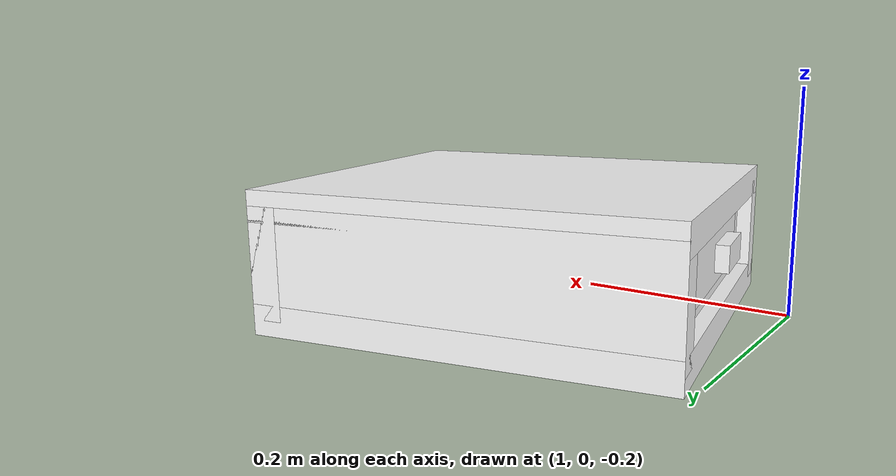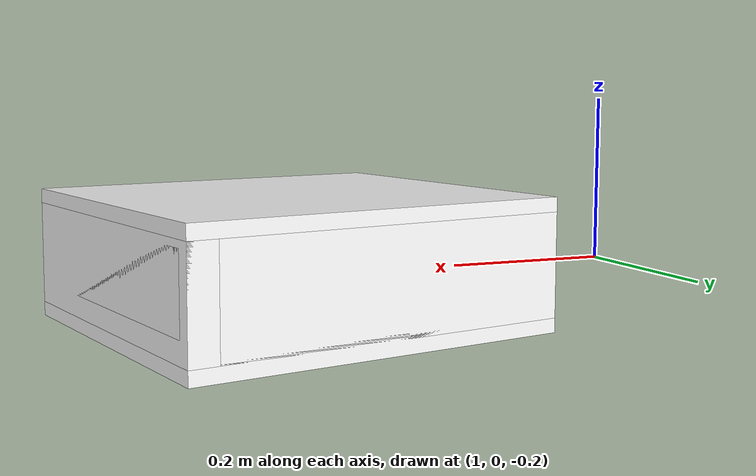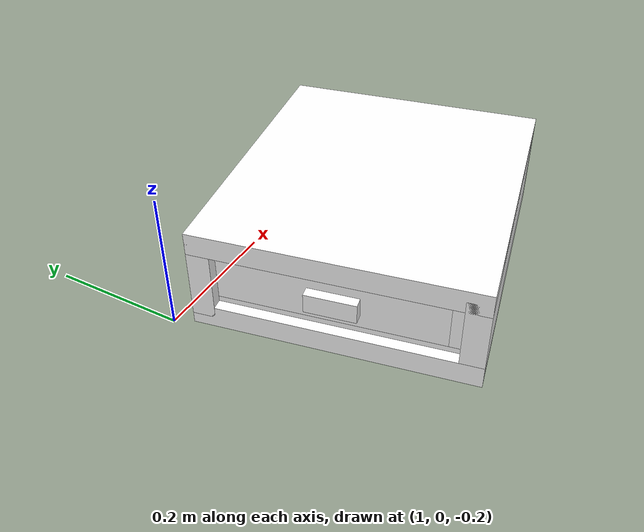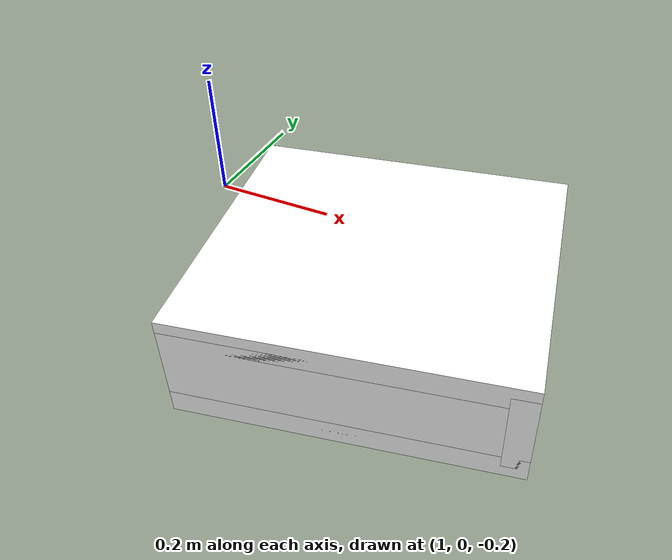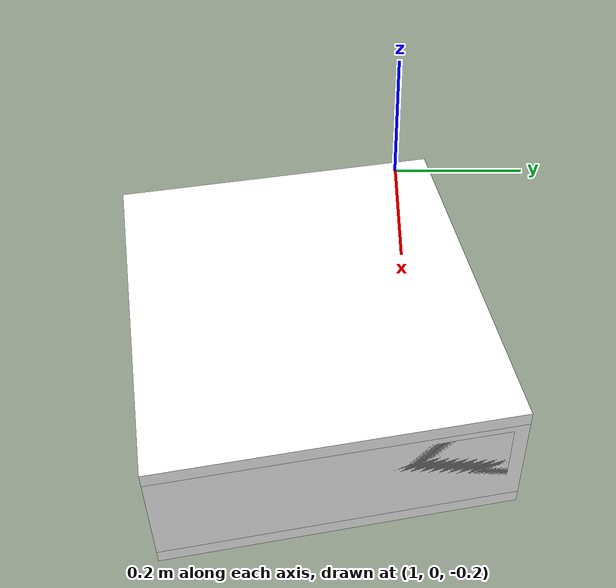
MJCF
<mujoco model="drawer">
        <compiler angle="radian" eulerseq='zxy' />
        <option gravity = "0 0 0" />
        <option>
            <flag contact = "disable"/>
        </option>
        <statistic	extent="1.0" center="0.0 0.0 0.0"/>
        <visual>
            <map fogstart="3" fogend="5" force="0.1" znear=" 0.100000 " zfar=" 12.000000 "/>
        </visual>
        <size njmax="500" nconmax="100" />
        <actuator>
            <velocity joint="drawerJ" name="viva_revolution" kv='10'></velocity>
        </actuator>
        <asset>
            <texture builtin="flat" name="objtex" height="32" width="32" rgb1="1 1 1" type="cube"></texture>
            <texture builtin="flat" name="handletex" height="32" width="32" rgb1="1 1 1" type="cube"></texture>
            <material name="geomObj" shininess="0.03" specular="0.75" texture="objtex"></material>
            <material name="geomHandle" shininess="0.03" specular="0.75" texture="handletex"></material>
        </asset>
        <worldbody>
            <body name="cabinet_bottom" pos= " 1.363375 -0.133627 -0.265827 "  quat= " -0.094581 0.000000 0.000000 0.995517" >
                <inertial pos="0 0 0" mass="1" diaginertia="1 1 1" />
                <geom size= " 0.245980 0.220405 0.018226 "  type="box" material="geomObj" name="b"/>
                <body name="cabinet_left" pos= " 0.000000 -0.202179 0.065346 " >
                    <inertial pos="0 0 0" mass="1" diaginertia="1 1 1" />
                    <geom size= " 0.245980 0.018226 0.065346 "  type="box" material="geomObj" name="c" />
                </body>
                <body name="cabinet_right" pos= " 0.000000 0.202179 0.065346 " >
                    <inertial pos="0 0 0" mass="1" diaginertia="1 1 1" />
                    <geom size= " 0.245980 0.018226 0.065346 "  type="box" material="geomObj" name="d" />
                </body>
                <body name="cabinet_top" pos= " 0.000000 0.000000 0.130692 " >
                    <inertial pos="0 0 0" mass="1" diaginertia="1 1 1" />
                    <geom size= " 0.245980 0.220405 0.018226 "  type="box" material="geomObj" name="e"/>
                </body>
                <body name="cabinet_back" pos= " -0.227755 0.000000 0.065346 "  >
                    <inertial pos="0 0 0" mass="1" diaginertia="1 1 1" />
                    <geom size= " 0.018226 0.220405 0.065346 "  type="box" material="geomObj" name="f" />
                </body>
                <body name="drawer" pos= " 0.000000 0.000000 0.009113 "  >
                    <geom size= " 0.227755 0.202179 0.018226 "  type="box" material="geomObj" name="ddddfadfadsfac" />
                    <joint name="drawerJ" pos="0 0 0" axis="1 0 0" type="slide" limited="true" range= "0  0.36897023767232895 "  />
                    <inertial pos="0 0 0" mass="1" diaginertia="1 1 1" />
                    <body name="drawer_left" pos= " 0.000000 -0.183954 0.065346 " >
                        <inertial pos="0 0 0" mass="1" diaginertia="1 1 1" />
                        <geom size= " 0.227755 0.018226 0.047120 "  type="box" material="geomObj" name="ddc" />
                    </body>
                    <body name="drawer_right" pos= " 0.000000 0.183954 0.065346 " >
                        <inertial pos="0 0 0" mass="1" diaginertia="1 1 1" />
                        <geom size= " 0.227755 0.018226 0.047120 "  type="box" material="geomObj" name="dddd" />
                    </body>
                    <body name="drawer_front" pos= " 0.209529 0.000000 0.065346 " >
                        <inertial pos="0 0 0" mass="1" diaginertia="1 1 1" />
                        <geom size= " 0.018226 0.202179 0.047120 "  type="box" material="geomObj" name="eeeee"/>
                    </body>
                    <body name="drawer_back" pos= " -0.227755 0.000000 0.065346 "  >
                        <inertial pos="0 0 0" mass="1" diaginertia="1 1 1" />
                        <geom size= " 0.018226 0.202179 0.047120 "  type="box" material="geomObj" name="fffff" />
                    </body>
                    <body name="knob" pos= " 0.245980 0.000000 0.065346 " >
                        <inertial pos="0 0 0" mass="0.1" diaginertia="0.1 0.1 0.1" />
                        <geom size= " 0.008066 0.039514 0.015721 "  pos="0 0 0" type="box" material="geomHandle" name="handle"/>
                    </body>
                </body>
            </body>
            <body name="external_camera_body_0" pos="0.0 0 0.00">
                <camera euler="-1.57 1.57 0.0" fovy=" 54.280851 " name="external_camera_0" pos="0.0 0 0"></camera>
                <inertial pos= " 0.00 0.0 0.000000 " mass="1" diaginertia="1 1 1" />
                <joint name="cam_j" pos="0.0 0 0" axis = "1 0 0" type="free" />
            </body>
        </worldbody>
    </mujoco>
